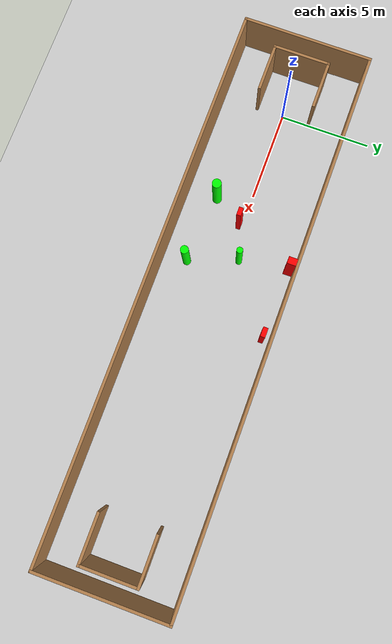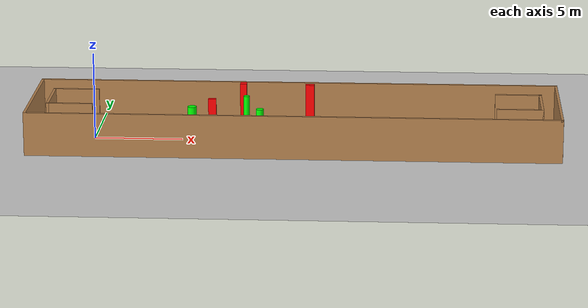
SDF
<sdf version="1.7">
 <world name="default">
  <light name="sun" type="directional">
   <pose>0 0 10 0 -0 0</pose>
   <diffuse>0.8 0.8 0.8 1</diffuse>
   <specular>0.2 0.2 0.2 1</specular>
   <attenuation>
    <range>1000</range>
    <constant>0.9</constant>
    <linear>0.01</linear>
    <quadratic>0.001</quadratic>
   </attenuation>
   <direction>-0.5 0.1 -0.9</direction>
   <spot><inner_angle>0</inner_angle><outer_angle>0</outer_angle><falloff>0</falloff></spot>
  </light>
  <model name="ground_plane">
   <static>1</static>
   <link name="link">
    <collision name="collision">
     <geometry><plane><normal>0 0 1</normal><size>100 100</size></plane></geometry>
     <surface>
      <contact><collide_bitmask>65535</collide_bitmask></contact>
      <friction><ode><mu>100</mu><mu2>50</mu2></ode></friction>
     </surface>
    </collision>
    <visual name="visual">
     <cast_shadows>0</cast_shadows>
     <geometry><plane><normal>0 0 1</normal><size>100 100</size></plane></geometry>
     <material>
      <script><uri>file://media/materials/scripts/gazebo.material</uri><name>Gazebo/Grey</name></script>
     </material>
    </visual>
   </link>
  </model>
  <gravity>0 0 -9.8</gravity>
  <magnetic_field>6e-06 2.3e-05 -4.2e-05</magnetic_field>
  <atmosphere type="adiabatic"/>
  <physics type="ode">
   <max_step_size>0.001</max_step_size>
   <real_time_factor>1</real_time_factor>
   <real_time_update_rate>1000</real_time_update_rate>
  </physics>
  <scene><ambient>0.4 0.4 0.4 1</ambient><background>0.7 0.7 0.7 1</background><shadows>1</shadows></scene>
  <spherical_coordinates>
   <surface_model>EARTH_WGS84</surface_model>
   <latitude_deg>0</latitude_deg>
   <longitude_deg>0</longitude_deg>
   <elevation>0</elevation>
   <heading_deg>0</heading_deg>
  </spherical_coordinates>
  <model name="my_base_walls">
   <link name="Wall_0">
    <collision name="Wall_0_Collision">
     <geometry><box><size>7.15 0.15 2.5</size></box></geometry>
     <pose>0 0 1.25 0 -0 0</pose>
    </collision>
    <visual name="Wall_0_Visual">
     <pose>0 0 1.25 0 -0 0</pose>
     <geometry><box><size>7.15 0.15 2.5</size></box></geometry>
     <material>
      <script><uri>file://media/materials/scripts/gazebo.material</uri><name>Gazebo/Wood</name></script>
      <ambient>1 1 1 1</ambient>
     </material>
     <meta><layer>0</layer></meta>
    </visual>
    <pose>-15 0 0 0 -0 1.5708</pose>
   </link>
   <link name="Wall_10">
    <collision name="Wall_10_Collision">
     <geometry><box><size>2.65 0.15 2.5</size></box></geometry>
     <pose>0 0 1.25 0 -0 0</pose>
    </collision>
    <visual name="Wall_10_Visual">
     <pose>0 0 1.25 0 -0 0</pose>
     <geometry><box><size>2.65 0.15 2.5</size></box></geometry>
     <material>
      <script><uri>file://media/materials/scripts/gazebo.material</uri><name>Gazebo/Wood</name></script>
      <ambient>1 1 1 1</ambient>
     </material>
     <meta><layer>0</layer></meta>
    </visual>
    <pose>-12.75 -1.5 0 0 -0 0</pose>
   </link>
   <link name="Wall_12">
    <collision name="Wall_12_Collision">
     <geometry><box><size>2.65 0.15 2.5</size></box></geometry>
     <pose>0 0 1.25 0 -0 0</pose>
    </collision>
    <visual name="Wall_12_Visual">
     <pose>0 0 1.25 0 -0 0</pose>
     <geometry><box><size>2.65 0.15 2.5</size></box></geometry>
     <material>
      <script><uri>file://media/materials/scripts/gazebo.material</uri><name>Gazebo/Wood</name></script>
      <ambient>1 1 1 1</ambient>
     </material>
     <meta><layer>0</layer></meta>
    </visual>
    <pose>-12.75 1.5 0 0 -0 0</pose>
   </link>
   <link name="Wall_14">
    <collision name="Wall_14_Collision">
     <geometry><box><size>3.15 0.15 2.5</size></box></geometry>
     <pose>0 0 1.25 0 -0 0</pose>
    </collision>
    <visual name="Wall_14_Visual">
     <pose>0 0 1.25 0 -0 0</pose>
     <geometry><box><size>3.15 0.15 2.5</size></box></geometry>
     <material>
      <script><uri>file://media/materials/scripts/gazebo.material</uri><name>Gazebo/Wood</name></script>
      <ambient>1 1 1 1</ambient>
     </material>
     <meta><layer>0</layer></meta>
    </visual>
    <pose>14 0 0 0 -0 -1.5708</pose>
   </link>
   <link name="Wall_15">
    <collision name="Wall_15_Collision">
     <geometry><box><size>2.65 0.15 2.5</size></box></geometry>
     <pose>0 0 1.25 0 -0 0</pose>
    </collision>
    <visual name="Wall_15_Visual">
     <pose>0 0 1.25 0 -0 0</pose>
     <geometry><box><size>2.65 0.15 2.5</size></box></geometry>
     <material>
      <script><uri>file://media/materials/scripts/gazebo.material</uri><name>Gazebo/Wood</name></script>
      <ambient>1 1 1 1</ambient>
     </material>
     <meta><layer>0</layer></meta>
    </visual>
    <pose>12.75 -1.5 0 0 -0 3.14159</pose>
   </link>
   <link name="Wall_17">
    <collision name="Wall_17_Collision">
     <geometry><box><size>2.65 0.15 2.5</size></box></geometry>
     <pose>0 0 1.25 0 -0 0</pose>
    </collision>
    <visual name="Wall_17_Visual">
     <pose>0 0 1.25 0 -0 0</pose>
     <geometry><box><size>2.65 0.15 2.5</size></box></geometry>
     <material>
      <script><uri>file://media/materials/scripts/gazebo.material</uri><name>Gazebo/Wood</name></script>
      <ambient>1 1 1 1</ambient>
     </material>
     <meta><layer>0</layer></meta>
    </visual>
    <pose>12.75 1.5 0 0 -0 3.14159</pose>
   </link>
   <link name="Wall_2">
    <collision name="Wall_2_Collision">
     <geometry><box><size>30.15 0.15 2.5</size></box></geometry>
     <pose>0 0 1.25 0 -0 0</pose>
    </collision>
    <visual name="Wall_2_Visual">
     <pose>0 0 1.25 0 -0 0</pose>
     <geometry><box><size>30.15 0.15 2.5</size></box></geometry>
     <material>
      <script><uri>file://media/materials/scripts/gazebo.material</uri><name>Gazebo/Wood</name></script>
      <ambient>1 1 1 1</ambient>
     </material>
     <meta><layer>0</layer></meta>
    </visual>
    <pose>-0 -3.5 0 0 -0 0</pose>
   </link>
   <link name="Wall_4">
    <collision name="Wall_4_Collision">
     <geometry><box><size>30.15 0.15 2.5</size></box></geometry>
     <pose>0 0 1.25 0 -0 0</pose>
    </collision>
    <visual name="Wall_4_Visual">
     <pose>0 0 1.25 0 -0 0</pose>
     <geometry><box><size>30.15 0.15 2.5</size></box></geometry>
     <material>
      <script><uri>file://media/materials/scripts/gazebo.material</uri><name>Gazebo/Wood</name></script>
      <ambient>1 1 1 1</ambient>
     </material>
     <meta><layer>0</layer></meta>
    </visual>
    <pose>-0 3.5 0 0 -0 0</pose>
   </link>
   <link name="Wall_6">
    <collision name="Wall_6_Collision">
     <geometry><box><size>7.15 0.15 2.5</size></box></geometry>
     <pose>0 0 1.25 0 -0 0</pose>
    </collision>
    <visual name="Wall_6_Visual">
     <pose>0 0 1.25 0 -0 0</pose>
     <geometry><box><size>7.15 0.15 2.5</size></box></geometry>
     <material>
      <script><uri>file://media/materials/scripts/gazebo.material</uri><name>Gazebo/Wood</name></script>
      <ambient>1 1 1 1</ambient>
     </material>
     <meta><layer>0</layer></meta>
    </visual>
    <pose>15 0 0 0 -0 -1.5708</pose>
   </link>
   <link name="Wall_9">
    <collision name="Wall_9_Collision">
     <geometry><box><size>3.15 0.15 2.5</size></box></geometry>
     <pose>0 0 1.25 0 -0 0</pose>
    </collision>
    <visual name="Wall_9_Visual">
     <pose>0 0 1.25 0 -0 0</pose>
     <geometry><box><size>3.15 0.15 2.5</size></box></geometry>
     <material>
      <script><uri>file://media/materials/scripts/gazebo.material</uri><name>Gazebo/Wood</name></script>
      <ambient>1 1 1 1</ambient>
     </material>
     <meta><layer>0</layer></meta>
    </visual>
    <pose>-14 0 0 0 -0 -1.5708</pose>
   </link>
   <static>1</static>
   <pose>11.5 0 0 0 -0 0</pose>
  </model>
  <model name="cylinder1">
   <static>1</static>
   <link name="link">
    <inertial>
     <mass>1</mass>
     <inertia><ixx>0.5</ixx><ixy>0</ixy><ixz>0</ixz><iyy>0.5</iyy><iyz>0</iyz><izz>1</izz></inertia>
    </inertial>
    <collision name="collision">
     <geometry><cylinder><radius>0.16818719700591378</radius><length>2.5</length></cylinder></geometry>
    </collision>
    <visual name="visual">
     <geometry><cylinder><radius>0.16818719700591378</radius><length>2.5</length></cylinder></geometry>
     <material>
      <ambient>0 1 0 1</ambient>
      <diffuse>0 1 0 1</diffuse>
      <specular>0.1 0.1 0.1 1</specular>
      <emissive>0 0 0 0</emissive>
     </material>
    </visual>
   </link>
   <pose>8.69685857344189 0.48811643504400637 1.25 0 0 0</pose>
  </model>
  <model name="cylinder2">
   <static>1</static>
   <link name="link">
    <inertial>
     <mass>1</mass>
     <inertia><ixx>0.5</ixx><ixy>0</ixy><ixz>0</ixz><iyy>0.5</iyy><iyz>0</iyz><izz>1</izz></inertia>
    </inertial>
    <collision name="collision">
     <geometry><cylinder><radius>0.2179391904357254</radius><length>2.5</length></cylinder></geometry>
    </collision>
    <visual name="visual">
     <geometry><cylinder><radius>0.2179391904357254</radius><length>2.5</length></cylinder></geometry>
     <material>
      <ambient>0 1 0 1</ambient>
      <diffuse>0 1 0 1</diffuse>
      <specular>0.1 0.1 0.1 1</specular>
      <emissive>0 0 0 0</emissive>
     </material>
    </visual>
   </link>
   <pose>9.622507190365392 -2.1523031369157914 1.25 0 0 0</pose>
  </model>
  <model name="cylinder3">
   <static>1</static>
   <link name="link">
    <inertial>
     <mass>1</mass>
     <inertia><ixx>0.5</ixx><ixy>0</ixy><ixz>0</ixz><iyy>0.5</iyy><iyz>0</iyz><izz>1</izz></inertia>
    </inertial>
    <collision name="collision">
     <geometry><cylinder><radius>0.24825959664890979</radius><length>2.5</length></cylinder></geometry>
    </collision>
    <visual name="visual">
     <geometry><cylinder><radius>0.24825959664890979</radius><length>2.5</length></cylinder></geometry>
     <material>
      <ambient>0 1 0 1</ambient>
      <diffuse>0 1 0 1</diffuse>
      <specular>0.1 0.1 0.1 1</specular>
      <emissive>0 0 0 0</emissive>
     </material>
    </visual>
   </link>
   <pose>5.77600322568934 -1.8115731843703782 1.25 0 0 0</pose>
  </model>
  <model name="box1">
   <static>1</static>
   <link name="link">
    <inertial>
     <mass>1</mass>
     <inertia><ixx>0.083</ixx><ixy>0</ixy><ixz>0</ixz><iyy>0.083</iyy><iyz>0</iyz><izz>0.083</izz></inertia>
    </inertial>
    <collision name="collision">
     <geometry><box><size>0.5066639536805007 0.26034136112170264 2.5</size></box></geometry>
    </collision>
    <visual name="visual">
     <geometry><box><size>0.5066639536805007 0.26034136112170264 2.5</size></box></geometry>
     <material>
      <ambient>1 0 0 1</ambient>
      <diffuse>1 0 0 1</diffuse>
      <specular>0.1 0.1 0.1 1</specular>
      <emissive>0 0 0 0</emissive>
     </material>
    </visual>
    <sensor name="my_contact" type="contact">
     <contact><collision>box_collision</collision><topic>__default_topic__</topic></contact>
    </sensor>
   </link>
   <pose>12.216497490316732 3.031126962813329 1.25 0 0 0</pose>
  </model>
  <model name="box2">
   <static>1</static>
   <link name="link">
    <inertial>
     <mass>1</mass>
     <inertia><ixx>0.083</ixx><ixy>0</ixy><ixz>0</ixz><iyy>0.083</iyy><iyz>0</iyz><izz>0.083</izz></inertia>
    </inertial>
    <collision name="collision">
     <geometry><box><size>0.44149205236868705 0.23992324521230163 2.5</size></box></geometry>
    </collision>
    <visual name="visual">
     <geometry><box><size>0.44149205236868705 0.23992324521230163 2.5</size></box></geometry>
     <material>
      <ambient>1 0 0 1</ambient>
      <diffuse>1 0 0 1</diffuse>
      <specular>0.1 0.1 0.1 1</specular>
      <emissive>0 0 0 0</emissive>
     </material>
    </visual>
    <sensor name="my_contact" type="contact">
     <contact><collision>box_collision</collision><topic>__default_topic__</topic></contact>
    </sensor>
   </link>
   <pose>6.777474246833677 -0.1836817848078196 1.25 0 0 0</pose>
  </model>
  <model name="box3">
   <static>1</static>
   <link name="link">
    <inertial>
     <mass>1</mass>
     <inertia><ixx>0.083</ixx><ixy>0</ixy><ixz>0</ixz><iyy>0.083</iyy><iyz>0</iyz><izz>0.083</izz></inertia>
    </inertial>
    <collision name="collision">
     <geometry><box><size>0.3766788554060301 0.48704842168076956 2.5</size></box></geometry>
    </collision>
    <visual name="visual">
     <geometry><box><size>0.3766788554060301 0.48704842168076956 2.5</size></box></geometry>
     <material>
      <ambient>1 0 0 1</ambient>
      <diffuse>1 0 0 1</diffuse>
      <specular>0.1 0.1 0.1 1</specular>
      <emissive>0 0 0 0</emissive>
     </material>
    </visual>
    <sensor name="my_contact" type="contact">
     <contact><collision>box_collision</collision><topic>__default_topic__</topic></contact>
    </sensor>
   </link>
   <pose>8.33530226520483 3.1838077678250354 1.25 0 0 0</pose>
  </model>
 </world>
</sdf>
